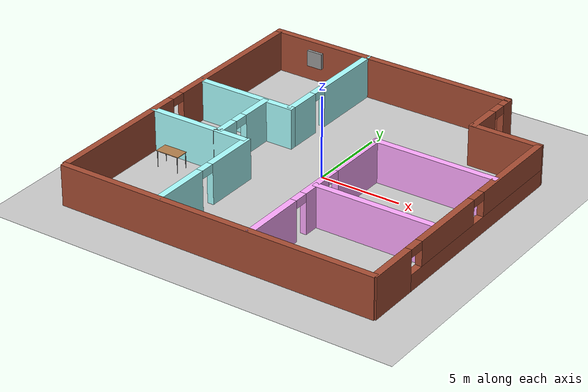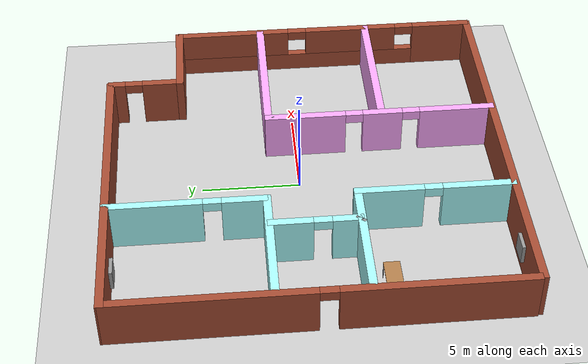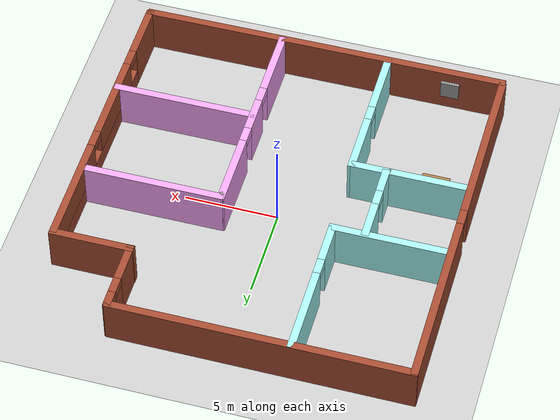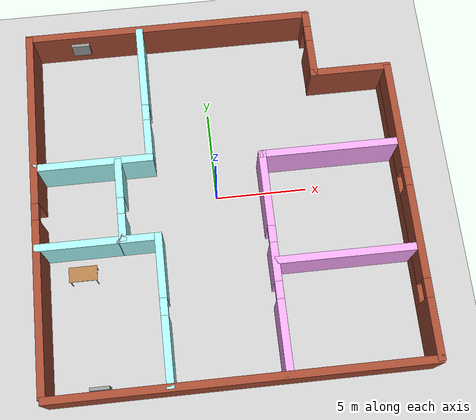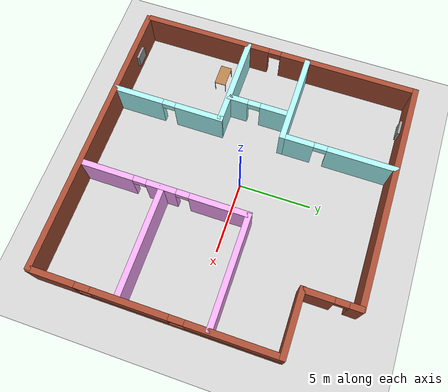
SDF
<sdf version="1.6">
 <world name="default">
  <model name="ground_plane">
   <static>1</static>
   <link name="link">
    <collision name="collision">
     <geometry><plane><normal>0 0 1</normal><size>100 100</size></plane></geometry>
     <surface>
      <contact><collide_bitmask>65535</collide_bitmask></contact>
      <friction><ode><mu>100</mu><mu2>50</mu2></ode></friction>
     </surface>
    </collision>
    <visual name="visual">
     <cast_shadows>0</cast_shadows>
     <geometry><plane><normal>0 0 1</normal><size>100 100</size></plane></geometry>
     <material>
      <script><uri>file://media/materials/scripts/gazebo.material</uri><name>Gazebo/Grey</name></script>
     </material>
    </visual>
   </link>
  </model>
  <model name="Building">
   <pose>0.26953 -0.33346 0 0 -0 0</pose>
   <link name="Wall_1">
    <collision name="Wall_1_Collision">
     <geometry><box><size>16 0.4 2.5</size></box></geometry>
     <pose>0 0 1.25 0 -0 0</pose>
    </collision>
    <visual name="Wall_1_Visual">
     <pose>0 0 1.25 0 -0 0</pose>
     <geometry><box><size>16 0.4 2.5</size></box></geometry>
     <material>
      <script><uri>file://media/materials/scripts/gazebo.material</uri><name>Gazebo/Bricks</name></script>
      <ambient>1 1 1 1</ambient>
     </material>
     <meta><layer>0</layer></meta>
    </visual>
    <pose>-2.07774 9.96209 0 0 -0 3.14159</pose>
   </link>
   <link name="Wall_12">
    <collision name="Wall_12_Collision">
     <geometry><box><size>4.5 0.4 2.5</size></box></geometry>
     <pose>0 0 1.25 0 -0 0</pose>
    </collision>
    <visual name="Wall_12_Visual">
     <pose>0 0 1.25 0 -0 0</pose>
     <geometry><box><size>4.5 0.4 2.5</size></box></geometry>
     <material>
      <script><uri>file://media/materials/scripts/gazebo.material</uri><name>Gazebo/Bricks</name></script>
      <ambient>1 1 1 1</ambient>
     </material>
     <meta><layer>0</layer></meta>
    </visual>
    <pose>7.82092 6.27346 0 0 -0 3.14159</pose>
   </link>
   <link name="Wall_16">
    <pose>9.88147 -1.86854 0 0 -0 1.5708</pose>
    <visual name="Wall_16_Visual_0">
     <pose>-6.60109 0 1.25 0 -0 0</pose>
     <geometry><box><size>3.19781 0.4 2.5</size></box></geometry>
     <material>
      <script><uri>file://media/materials/scripts/gazebo.material</uri><name>Gazebo/Bricks</name></script>
      <ambient>1 1 1 1</ambient>
     </material>
     <meta><layer>0</layer></meta>
    </visual>
    <collision name="Wall_16_Collision_0">
     <geometry><box><size>3.19781 0.4 2.5</size></box></geometry>
     <pose>-6.60109 0 1.25 0 -0 0</pose>
    </collision>
    <visual name="Wall_16_Visual_1">
     <pose>1.59891 0 0.5 0 -0 0</pose>
     <geometry><box><size>13.2022 0.4 1</size></box></geometry>
     <material>
      <script><uri>file://media/materials/scripts/gazebo.material</uri><name>Gazebo/Bricks</name></script>
      <ambient>1 1 1 1</ambient>
     </material>
     <meta><layer>0</layer></meta>
    </visual>
    <collision name="Wall_16_Collision_1">
     <geometry><box><size>13.2022 0.4 1</size></box></geometry>
     <pose>1.59891 0 0.5 0 -0 0</pose>
    </collision>
    <visual name="Wall_16_Visual_2">
     <pose>-1.4702 0 1.75 0 -0 0</pose>
     <geometry><box><size>5.06397 0.4 1.5</size></box></geometry>
     <material>
      <script><uri>file://media/materials/scripts/gazebo.material</uri><name>Gazebo/Bricks</name></script>
      <ambient>1 1 1 1</ambient>
     </material>
     <meta><layer>0</layer></meta>
    </visual>
    <collision name="Wall_16_Collision_2">
     <geometry><box><size>5.06397 0.4 1.5</size></box></geometry>
     <pose>-1.4702 0 1.75 0 -0 0</pose>
    </collision>
    <visual name="Wall_16_Visual_3">
     <pose>5.13089 0 1.75 0 -0 0</pose>
     <geometry><box><size>6.13821 0.4 1.5</size></box></geometry>
     <material>
      <script><uri>file://media/materials/scripts/gazebo.material</uri><name>Gazebo/Bricks</name></script>
      <ambient>1 1 1 1</ambient>
     </material>
     <meta><layer>0</layer></meta>
    </visual>
    <collision name="Wall_16_Collision_3">
     <geometry><box><size>6.13821 0.4 1.5</size></box></geometry>
     <pose>5.13089 0 1.75 0 -0 0</pose>
    </collision>
    <visual name="Wall_16_Visual_4">
     <pose>-4.50219 0 2.25 0 -0 0</pose>
     <geometry><box><size>1 0.4 0.5</size></box></geometry>
     <material>
      <script><uri>file://media/materials/scripts/gazebo.material</uri><name>Gazebo/Bricks</name></script>
      <ambient>1 1 1 1</ambient>
     </material>
     <meta><layer>0</layer></meta>
    </visual>
    <collision name="Wall_16_Collision_4">
     <geometry><box><size>1 0.4 0.5</size></box></geometry>
     <pose>-4.50219 0 2.25 0 -0 0</pose>
    </collision>
    <visual name="Wall_16_Visual_5">
     <pose>1.56178 0 2.25 0 -0 0</pose>
     <geometry><box><size>1 0.4 0.5</size></box></geometry>
     <material>
      <script><uri>file://media/materials/scripts/gazebo.material</uri><name>Gazebo/Bricks</name></script>
      <ambient>1 1 1 1</ambient>
     </material>
     <meta><layer>0</layer></meta>
    </visual>
    <collision name="Wall_16_Collision_5">
     <geometry><box><size>1 0.4 0.5</size></box></geometry>
     <pose>1.56178 0 2.25 0 -0 0</pose>
    </collision>
   </link>
   <link name="Wall_20">
    <pose>-3.68853 6.13145 0 0 0 -1.5708</pose>
    <visual name="Wall_20_Visual_0">
     <pose>-1.57293 0 1.25 0 -0 0</pose>
     <geometry><box><size>4.85414 0.4 2.5</size></box></geometry>
     <material>
      <script><uri>file://media/materials/scripts/gazebo.material</uri><name>Gazebo/Grey</name></script>
      <ambient>0.666667 1 1 1</ambient>
     </material>
     <meta><layer>0</layer></meta>
    </visual>
    <collision name="Wall_20_Collision_0">
     <geometry><box><size>4.85414 0.4 2.5</size></box></geometry>
     <pose>-1.57293 0 1.25 0 -0 0</pose>
    </collision>
    <visual name="Wall_20_Visual_1">
     <pose>2.87707 0 1.25 0 -0 0</pose>
     <geometry><box><size>2.24586 0.4 2.5</size></box></geometry>
     <material>
      <script><uri>file://media/materials/scripts/gazebo.material</uri><name>Gazebo/Grey</name></script>
      <ambient>0.666667 1 1 1</ambient>
     </material>
     <meta><layer>0</layer></meta>
    </visual>
    <collision name="Wall_20_Collision_1">
     <geometry><box><size>2.24586 0.4 2.5</size></box></geometry>
     <pose>2.87707 0 1.25 0 -0 0</pose>
    </collision>
    <visual name="Wall_20_Visual_2">
     <pose>1.30414 0 2.25 0 -0 0</pose>
     <geometry><box><size>0.9 0.4 0.5</size></box></geometry>
     <material>
      <script><uri>file://media/materials/scripts/gazebo.material</uri><name>Gazebo/Grey</name></script>
      <ambient>0.666667 1 1 1</ambient>
     </material>
     <meta><layer>0</layer></meta>
    </visual>
    <collision name="Wall_20_Collision_2">
     <geometry><box><size>0.9 0.4 0.5</size></box></geometry>
     <pose>1.30414 0 2.25 0 -0 0</pose>
    </collision>
   </link>
   <link name="Wall_22">
    <collision name="Wall_22_Collision">
     <geometry><box><size>6.5 0.4 2.5</size></box></geometry>
     <pose>0 0 1.25 0 -0 0</pose>
    </collision>
    <visual name="Wall_22_Visual">
     <pose>0 0 1.25 0 -0 0</pose>
     <geometry><box><size>6.5 0.4 2.5</size></box></geometry>
     <material>
      <script><uri>file://media/materials/scripts/gazebo.material</uri><name>Gazebo/Grey</name></script>
      <ambient>0.666667 1 1 1</ambient>
     </material>
     <meta><layer>0</layer></meta>
    </visual>
    <pose>-6.73853 2.18345 0 0 -0 3.14159</pose>
   </link>
   <link name="Wall_26">
    <pose>-3.57114 -6.0289 0 0 0 -1.5708</pose>
    <visual name="Wall_26_Visual_0">
     <pose>-2.26979 0 1.25 0 -0 0</pose>
     <geometry><box><size>3.46043 0.4 2.5</size></box></geometry>
     <material>
      <script><uri>file://media/materials/scripts/gazebo.material</uri><name>Gazebo/Grey</name></script>
      <ambient>0.666667 1 1 1</ambient>
     </material>
     <meta><layer>0</layer></meta>
    </visual>
    <collision name="Wall_26_Collision_0">
     <geometry><box><size>3.46043 0.4 2.5</size></box></geometry>
     <pose>-2.26979 0 1.25 0 -0 0</pose>
    </collision>
    <visual name="Wall_26_Visual_1">
     <pose>2.18022 0 1.25 0 -0 0</pose>
     <geometry><box><size>3.63957 0.4 2.5</size></box></geometry>
     <material>
      <script><uri>file://media/materials/scripts/gazebo.material</uri><name>Gazebo/Grey</name></script>
      <ambient>0.666667 1 1 1</ambient>
     </material>
     <meta><layer>0</layer></meta>
    </visual>
    <collision name="Wall_26_Collision_1">
     <geometry><box><size>3.63957 0.4 2.5</size></box></geometry>
     <pose>2.18022 0 1.25 0 -0 0</pose>
    </collision>
    <visual name="Wall_26_Visual_2">
     <pose>-0.089571 0 2.25 0 -0 0</pose>
     <geometry><box><size>0.9 0.4 0.5</size></box></geometry>
     <material>
      <script><uri>file://media/materials/scripts/gazebo.material</uri><name>Gazebo/Grey</name></script>
      <ambient>0.666667 1 1 1</ambient>
     </material>
     <meta><layer>0</layer></meta>
    </visual>
    <collision name="Wall_26_Collision_2">
     <geometry><box><size>0.9 0.4 0.5</size></box></geometry>
     <pose>-0.089571 0 2.25 0 -0 0</pose>
    </collision>
   </link>
   <link name="Wall_28">
    <collision name="Wall_28_Collision">
     <geometry><box><size>6.5 0.4 2.5</size></box></geometry>
     <pose>0 0 1.25 0 -0 0</pose>
    </collision>
    <visual name="Wall_28_Visual">
     <pose>0 0 1.25 0 -0 0</pose>
     <geometry><box><size>6.5 0.4 2.5</size></box></geometry>
     <material>
      <script><uri>file://media/materials/scripts/gazebo.material</uri><name>Gazebo/Grey</name></script>
      <ambient>0.666667 1 1 1</ambient>
     </material>
     <meta><layer>0</layer></meta>
    </visual>
    <pose>-6.77241 -2.2283 0 0 -0 0</pose>
   </link>
   <link name="Wall_3">
    <pose>-9.88147 0.085654 0 0 -0 1.5708</pose>
    <visual name="Wall_3_Visual_0">
     <pose>-5.39114 0 1.25 0 -0 0</pose>
     <geometry><box><size>9.21772 0.4 2.5</size></box></geometry>
     <material>
      <script><uri>file://media/materials/scripts/gazebo.material</uri><name>Gazebo/Bricks</name></script>
      <ambient>1 1 1 1</ambient>
     </material>
     <meta><layer>0</layer></meta>
    </visual>
    <collision name="Wall_3_Collision_0">
     <geometry><box><size>9.21772 0.4 2.5</size></box></geometry>
     <pose>-5.39114 0 1.25 0 -0 0</pose>
    </collision>
    <visual name="Wall_3_Visual_1">
     <pose>5.05886 0 1.25 0 -0 0</pose>
     <geometry><box><size>9.88228 0.4 2.5</size></box></geometry>
     <material>
      <script><uri>file://media/materials/scripts/gazebo.material</uri><name>Gazebo/Bricks</name></script>
      <ambient>1 1 1 1</ambient>
     </material>
     <meta><layer>0</layer></meta>
    </visual>
    <collision name="Wall_3_Collision_1">
     <geometry><box><size>9.88228 0.4 2.5</size></box></geometry>
     <pose>5.05886 0 1.25 0 -0 0</pose>
    </collision>
    <visual name="Wall_3_Visual_2">
     <pose>-0.33228 0 2.25 0 -0 0</pose>
     <geometry><box><size>0.9 0.4 0.5</size></box></geometry>
     <material>
      <script><uri>file://media/materials/scripts/gazebo.material</uri><name>Gazebo/Bricks</name></script>
      <ambient>1 1 1 1</ambient>
     </material>
     <meta><layer>0</layer></meta>
    </visual>
    <collision name="Wall_3_Collision_2">
     <geometry><box><size>0.9 0.4 0.5</size></box></geometry>
     <pose>-0.33228 0 2.25 0 -0 0</pose>
    </collision>
   </link>
   <link name="Wall_30">
    <collision name="Wall_30_Collision">
     <geometry><box><size>0.543475 0.15 2.5</size></box></geometry>
     <pose>0 0 1.25 0 -0 0</pose>
    </collision>
    <visual name="Wall_30_Visual">
     <pose>0 0 1.25 0 -0 0</pose>
     <geometry><box><size>0.543475 0.15 2.5</size></box></geometry>
     <material>
      <script><uri>file://media/materials/scripts/gazebo.material</uri><name>Gazebo/Grey</name></script>
      <ambient>1 1 1 1</ambient>
     </material>
     <meta><layer>0</layer></meta>
    </visual>
    <pose>-5.5127 -2.17491 0 0 -0 0.960308</pose>
   </link>
   <link name="Wall_31">
    <pose>-5.39992 -0.02132 0 0 -0 1.5708</pose>
    <visual name="Wall_31_Visual_0">
     <pose>-1.54953 0 1.25 0 -0 0</pose>
     <geometry><box><size>1.50094 0.4 2.5</size></box></geometry>
     <material>
      <script><uri>file://media/materials/scripts/gazebo.material</uri><name>Gazebo/Grey</name></script>
      <ambient>0.666667 1 1 1</ambient>
     </material>
     <meta><layer>0</layer></meta>
    </visual>
    <collision name="Wall_31_Collision_0">
     <geometry><box><size>1.50094 0.4 2.5</size></box></geometry>
     <pose>-1.54953 0 1.25 0 -0 0</pose>
    </collision>
    <visual name="Wall_31_Visual_1">
     <pose>1.20047 0 1.25 0 -0 0</pose>
     <geometry><box><size>2.19906 0.4 2.5</size></box></geometry>
     <material>
      <script><uri>file://media/materials/scripts/gazebo.material</uri><name>Gazebo/Grey</name></script>
      <ambient>0.666667 1 1 1</ambient>
     </material>
     <meta><layer>0</layer></meta>
    </visual>
    <collision name="Wall_31_Collision_1">
     <geometry><box><size>2.19906 0.4 2.5</size></box></geometry>
     <pose>1.20047 0 1.25 0 -0 0</pose>
    </collision>
    <visual name="Wall_31_Visual_2">
     <pose>-0.34906 0 2.25 0 -0 0</pose>
     <geometry><box><size>0.9 0.4 0.5</size></box></geometry>
     <material>
      <script><uri>file://media/materials/scripts/gazebo.material</uri><name>Gazebo/Grey</name></script>
      <ambient>0.666667 1 1 1</ambient>
     </material>
     <meta><layer>0</layer></meta>
    </visual>
    <collision name="Wall_31_Collision_2">
     <geometry><box><size>0.9 0.4 0.5</size></box></geometry>
     <pose>-0.34906 0 2.25 0 -0 0</pose>
    </collision>
   </link>
   <link name="Wall_33">
    <pose>2.33747 -4.06916 0 0 -0 1.5708</pose>
    <visual name="Wall_33_Visual_0">
     <pose>-4.03633 0 1.25 0 -0 0</pose>
     <geometry><box><size>3.92733 0.4 2.5</size></box></geometry>
     <material>
      <script><uri>file://media/materials/scripts/gazebo.material</uri><name>Gazebo/Grey</name></script>
      <ambient>1 0.666667 1 1</ambient>
     </material>
     <meta><layer>0</layer></meta>
    </visual>
    <collision name="Wall_33_Collision_0">
     <geometry><box><size>3.92733 0.4 2.5</size></box></geometry>
     <pose>-4.03633 0 1.25 0 -0 0</pose>
    </collision>
    <visual name="Wall_33_Visual_1">
     <pose>-0.137613 0 1.25 0 -0 0</pose>
     <geometry><box><size>2.07011 0.4 2.5</size></box></geometry>
     <material>
      <script><uri>file://media/materials/scripts/gazebo.material</uri><name>Gazebo/Grey</name></script>
      <ambient>1 0.666667 1 1</ambient>
     </material>
     <meta><layer>0</layer></meta>
    </visual>
    <collision name="Wall_33_Collision_1">
     <geometry><box><size>2.07011 0.4 2.5</size></box></geometry>
     <pose>-0.137613 0 1.25 0 -0 0</pose>
    </collision>
    <visual name="Wall_33_Visual_2">
     <pose>3.89872 0 1.25 0 -0 0</pose>
     <geometry><box><size>4.20256 0.4 2.5</size></box></geometry>
     <material>
      <script><uri>file://media/materials/scripts/gazebo.material</uri><name>Gazebo/Grey</name></script>
      <ambient>1 0.666667 1 1</ambient>
     </material>
     <meta><layer>0</layer></meta>
    </visual>
    <collision name="Wall_33_Collision_2">
     <geometry><box><size>4.20256 0.4 2.5</size></box></geometry>
     <pose>3.89872 0 1.25 0 -0 0</pose>
    </collision>
    <visual name="Wall_33_Visual_3">
     <pose>-1.62267 0 2.25 0 -0 0</pose>
     <geometry><box><size>0.9 0.4 0.5</size></box></geometry>
     <material>
      <script><uri>file://media/materials/scripts/gazebo.material</uri><name>Gazebo/Grey</name></script>
      <ambient>1 0.666667 1 1</ambient>
     </material>
     <meta><layer>0</layer></meta>
    </visual>
    <collision name="Wall_33_Collision_3">
     <geometry><box><size>0.9 0.4 0.5</size></box></geometry>
     <pose>-1.62267 0 2.25 0 -0 0</pose>
    </collision>
    <visual name="Wall_33_Visual_4">
     <pose>1.34744 0 2.25 0 -0 0</pose>
     <geometry><box><size>0.9 0.4 0.5</size></box></geometry>
     <material>
      <script><uri>file://media/materials/scripts/gazebo.material</uri><name>Gazebo/Grey</name></script>
      <ambient>1 0.666667 1 1</ambient>
     </material>
     <meta><layer>0</layer></meta>
    </visual>
    <collision name="Wall_33_Collision_4">
     <geometry><box><size>0.9 0.4 0.5</size></box></geometry>
     <pose>1.34744 0 2.25 0 -0 0</pose>
    </collision>
   </link>
   <link name="Wall_35">
    <collision name="Wall_35_Collision">
     <geometry><box><size>7.75 0.4 2.5</size></box></geometry>
     <pose>0 0 1.25 0 -0 0</pose>
    </collision>
    <visual name="Wall_35_Visual">
     <pose>0 0 1.25 0 -0 0</pose>
     <geometry><box><size>7.75 0.4 2.5</size></box></geometry>
     <material>
      <script><uri>file://media/materials/scripts/gazebo.material</uri><name>Gazebo/Grey</name></script>
      <ambient>1 0.666667 1 1</ambient>
     </material>
     <meta><layer>0</layer></meta>
    </visual>
    <pose>6.08824 1.75246 0 0 -0 3.14159</pose>
   </link>
   <link name="Wall_36">
    <collision name="Wall_36_Collision">
     <geometry><box><size>0.379904 0.15 2.5</size></box></geometry>
     <pose>0 0 1.25 0 -0 0</pose>
    </collision>
    <visual name="Wall_36_Visual">
     <pose>0 0 1.25 0 -0 0</pose>
     <geometry><box><size>0.379904 0.15 2.5</size></box></geometry>
     <material>
      <script><uri>file://media/materials/scripts/gazebo.material</uri><name>Gazebo/Grey</name></script>
      <ambient>1 1 1 1</ambient>
     </material>
     <meta><layer>0</layer></meta>
    </visual>
    <pose>2.34699 1.6452 0 0 0 -1.20275</pose>
   </link>
   <link name="Wall_38">
    <collision name="Wall_38_Collision">
     <geometry><box><size>7.75 0.4 2.5</size></box></geometry>
     <pose>0 0 1.25 0 -0 0</pose>
    </collision>
    <visual name="Wall_38_Visual">
     <pose>0 0 1.25 0 -0 0</pose>
     <geometry><box><size>7.75 0.4 2.5</size></box></geometry>
     <material>
      <script><uri>file://media/materials/scripts/gazebo.material</uri><name>Gazebo/Grey</name></script>
      <ambient>1 0.666667 1 1</ambient>
     </material>
     <meta><layer>0</layer></meta>
    </visual>
    <pose>6.14183 -4.14619 0 0 -0 3.14159</pose>
   </link>
   <link name="Wall_6">
    <collision name="Wall_6_Collision">
     <geometry><box><size>20 0.4 2.5</size></box></geometry>
     <pose>0 0 1.25 0 -0 0</pose>
    </collision>
    <visual name="Wall_6_Visual">
     <pose>0 0 1.25 0 -0 0</pose>
     <geometry><box><size>20 0.4 2.5</size></box></geometry>
     <material>
      <script><uri>file://media/materials/scripts/gazebo.material</uri><name>Gazebo/Bricks</name></script>
      <ambient>0.666667 1 1 1</ambient>
     </material>
     <meta><layer>0</layer></meta>
    </visual>
    <pose>-0.004723 -9.96209 0 0 -0 3.14159</pose>
   </link>
   <link name="Wall_9">
    <pose>5.78731 8.10381 0 0 -0 1.5708</pose>
    <visual name="Wall_9_Visual_0">
     <pose>-0.909282 0 1.25 0 -0 0</pose>
     <geometry><box><size>2.18144 0.4 2.5</size></box></geometry>
     <material>
      <script><uri>file://media/materials/scripts/gazebo.material</uri><name>Gazebo/Bricks</name></script>
      <ambient>1 1 1 1</ambient>
     </material>
     <meta><layer>0</layer></meta>
    </visual>
    <collision name="Wall_9_Collision_0">
     <geometry><box><size>2.18144 0.4 2.5</size></box></geometry>
     <pose>-0.909282 0 1.25 0 -0 0</pose>
    </collision>
    <visual name="Wall_9_Visual_1">
     <pose>1.54072 0 1.25 0 -0 0</pose>
     <geometry><box><size>0.918564 0.4 2.5</size></box></geometry>
     <material>
      <script><uri>file://media/materials/scripts/gazebo.material</uri><name>Gazebo/Bricks</name></script>
      <ambient>1 1 1 1</ambient>
     </material>
     <meta><layer>0</layer></meta>
    </visual>
    <collision name="Wall_9_Collision_1">
     <geometry><box><size>0.918564 0.4 2.5</size></box></geometry>
     <pose>1.54072 0 1.25 0 -0 0</pose>
    </collision>
    <visual name="Wall_9_Visual_2">
     <pose>0.631436 0 2.25 0 -0 0</pose>
     <geometry><box><size>0.9 0.4 0.5</size></box></geometry>
     <material>
      <script><uri>file://media/materials/scripts/gazebo.material</uri><name>Gazebo/Bricks</name></script>
      <ambient>1 1 1 1</ambient>
     </material>
     <meta><layer>0</layer></meta>
    </visual>
    <collision name="Wall_9_Collision_2">
     <geometry><box><size>0.9 0.4 0.5</size></box></geometry>
     <pose>0.631436 0 2.25 0 -0 0</pose>
    </collision>
   </link>
   <link name="Window_0">
    <collision name="Window_0_Collision">
     <geometry><box><size>1 0.17 1</size></box></geometry>
     <pose>0 0 0.5 0 -0 0</pose>
    </collision>
    <visual name="Window_0_Visual">
     <pose>0 0 0.5 0 -0 0</pose>
     <geometry><box><size>1 0.17 1</size></box></geometry>
     <material>
      <script><uri>file://media/materials/scripts/gazebo.material</uri><name>Gazebo/Grey</name></script>
     </material>
    </visual>
    <pose>-7.09667 9.5936 1 0 -0 0</pose>
   </link>
   <link name="Window_1">
    <collision name="Window_1_Collision">
     <geometry><box><size>1 0.17 1</size></box></geometry>
     <pose>0 0 0.5 0 -0 0</pose>
    </collision>
    <visual name="Window_1_Visual">
     <pose>0 0 0.5 0 -0 0</pose>
     <geometry><box><size>1 0.17 1</size></box></geometry>
     <material>
      <script><uri>file://media/materials/scripts/gazebo.material</uri><name>Gazebo/Grey</name></script>
     </material>
    </visual>
    <pose>-7.09653 -9.58854 1 0 -0 0</pose>
   </link>
   <static>1</static>
  </model>
  <model name="table">
   <static>1</static>
   <link name="link">
    <collision name="surface">
     <pose>0 0 1 0 -0 0</pose>
     <geometry><box><size>1.5 0.8 0.03</size></box></geometry>
     <surface><friction><ode><mu>0.6</mu><mu2>0.6</mu2></ode></friction></surface>
    </collision>
    <visual name="visual1">
     <pose>0 0 1 0 -0 0</pose>
     <geometry><box><size>1.5 0.8 0.03</size></box></geometry>
     <material>
      <script><uri>file://media/materials/scripts/gazebo.material</uri><name>Gazebo/Wood</name></script>
     </material>
    </visual>
    <collision name="front_left_leg">
     <pose>0.68 0.38 0.5 0 -0 0</pose>
     <geometry><cylinder><radius>0.02</radius><length>1</length></cylinder></geometry>
    </collision>
    <visual name="front_left_leg">
     <pose>0.68 0.38 0.5 0 -0 0</pose>
     <geometry><cylinder><radius>0.02</radius><length>1</length></cylinder></geometry>
     <material>
      <script><uri>file://media/materials/scripts/gazebo.material</uri><name>Gazebo/Grey</name></script>
     </material>
    </visual>
    <collision name="front_right_leg">
     <pose>0.68 -0.38 0.5 0 -0 0</pose>
     <geometry><cylinder><radius>0.02</radius><length>1</length></cylinder></geometry>
    </collision>
    <visual name="front_right_leg">
     <pose>0.68 -0.38 0.5 0 -0 0</pose>
     <geometry><cylinder><radius>0.02</radius><length>1</length></cylinder></geometry>
     <material>
      <script><uri>file://media/materials/scripts/gazebo.material</uri><name>Gazebo/Grey</name></script>
     </material>
    </visual>
    <collision name="back_right_leg">
     <pose>-0.68 -0.38 0.5 0 -0 0</pose>
     <geometry><cylinder><radius>0.02</radius><length>1</length></cylinder></geometry>
    </collision>
    <visual name="back_right_leg">
     <pose>-0.68 -0.38 0.5 0 -0 0</pose>
     <geometry><cylinder><radius>0.02</radius><length>1</length></cylinder></geometry>
     <material>
      <script><uri>file://media/materials/scripts/gazebo.material</uri><name>Gazebo/Grey</name></script>
     </material>
    </visual>
    <collision name="back_left_leg">
     <pose>-0.68 0.38 0.5 0 -0 0</pose>
     <geometry><cylinder><radius>0.02</radius><length>1</length></cylinder></geometry>
    </collision>
    <visual name="back_left_leg">
     <pose>-0.68 0.38 0.5 0 -0 0</pose>
     <geometry><cylinder><radius>0.02</radius><length>1</length></cylinder></geometry>
     <material>
      <script><uri>file://media/materials/scripts/gazebo.material</uri><name>Gazebo/Grey</name></script>
     </material>
    </visual>
   </link>
   <pose>-7.48656 -3.80066 0 0 -0 0</pose>
  </model>
 </world>
</sdf>
